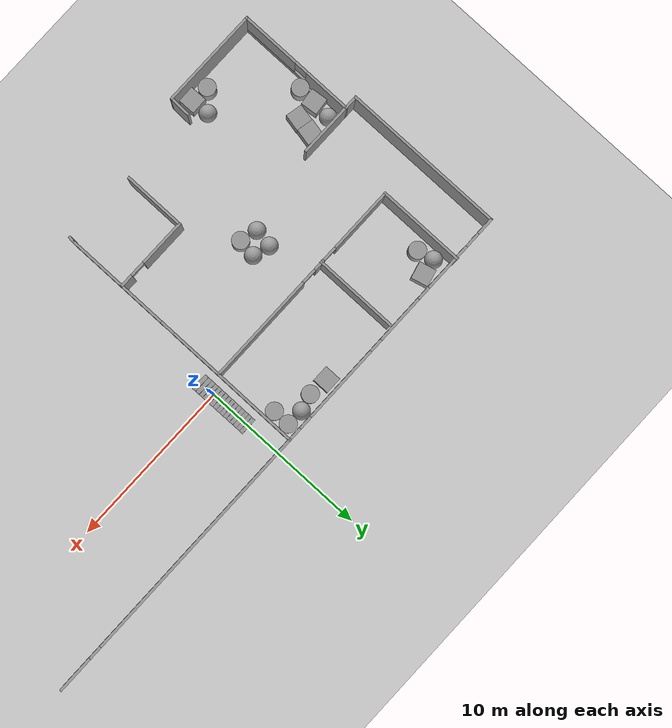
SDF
<sdf version="1.7">
 <world name="default">
  <model name="ground_plane">
   <static>1</static>
   <link name="link">
    <collision name="collision">
     <geometry><plane><normal>0 0 1</normal><size>100 100</size></plane></geometry>
     <surface>
      <contact><collide_bitmask>65535</collide_bitmask></contact>
      <friction><ode><mu>100</mu><mu2>50</mu2></ode></friction>
     </surface>
    </collision>
    <visual name="visual">
     <cast_shadows>0</cast_shadows>
     <geometry><plane><normal>0 0 1</normal><size>100 100</size></plane></geometry>
     <material>
      <script><uri>file://media/materials/scripts/gazebo.material</uri><name>Gazebo/Grey</name></script>
     </material>
    </visual>
   </link>
  </model>
  <model name="Dundler_mifflin">
   <pose>0.014796 -3.72139 0 0 -0 0</pose>
   <link name="Stairs_0">
    <visual name="Stairs_0_Visual_0">
     <pose>-0 6.1696 0.083333 0 -0 0</pose>
     <geometry><box><size>1 0.233333 0.166667</size></box></geometry>
     <material>
      <script><uri>file://media/materials/scripts/gazebo.material</uri><name>Gazebo/Grey</name></script>
      <ambient>1 1 1 1</ambient>
     </material>
     <meta><layer>0</layer></meta>
    </visual>
    <collision name="Stairs_0_Collision_0">
     <geometry><box><size>1 0.233333 0.166667</size></box></geometry>
     <pose>-0 6.1696 0.083333 0 -0 0</pose>
    </collision>
    <visual name="Stairs_0_Visual_1">
     <pose>-0 5.93627 0.25 0 -0 0</pose>
     <geometry><box><size>1 0.233333 0.166667</size></box></geometry>
     <material>
      <script><uri>file://media/materials/scripts/gazebo.material</uri><name>Gazebo/Grey</name></script>
      <ambient>1 1 1 1</ambient>
     </material>
     <meta><layer>0</layer></meta>
    </visual>
    <collision name="Stairs_0_Collision_1">
     <geometry><box><size>1 0.233333 0.166667</size></box></geometry>
     <pose>-0 5.93627 0.25 0 -0 0</pose>
    </collision>
    <visual name="Stairs_0_Visual_2">
     <pose>-0 5.70294 0.416667 0 -0 0</pose>
     <geometry><box><size>1 0.233333 0.166667</size></box></geometry>
     <material>
      <script><uri>file://media/materials/scripts/gazebo.material</uri><name>Gazebo/Grey</name></script>
      <ambient>1 1 1 1</ambient>
     </material>
     <meta><layer>0</layer></meta>
    </visual>
    <collision name="Stairs_0_Collision_2">
     <geometry><box><size>1 0.233333 0.166667</size></box></geometry>
     <pose>-0 5.70294 0.416667 0 -0 0</pose>
    </collision>
    <visual name="Stairs_0_Visual_3">
     <pose>-0 5.4696 0.583333 0 -0 0</pose>
     <geometry><box><size>1 0.233333 0.166667</size></box></geometry>
     <material>
      <script><uri>file://media/materials/scripts/gazebo.material</uri><name>Gazebo/Grey</name></script>
      <ambient>1 1 1 1</ambient>
     </material>
     <meta><layer>0</layer></meta>
    </visual>
    <collision name="Stairs_0_Collision_3">
     <geometry><box><size>1 0.233333 0.166667</size></box></geometry>
     <pose>-0 5.4696 0.583333 0 -0 0</pose>
    </collision>
    <visual name="Stairs_0_Visual_4">
     <pose>-0 5.23627 0.75 0 -0 0</pose>
     <geometry><box><size>1 0.233333 0.166667</size></box></geometry>
     <material>
      <script><uri>file://media/materials/scripts/gazebo.material</uri><name>Gazebo/Grey</name></script>
      <ambient>1 1 1 1</ambient>
     </material>
     <meta><layer>0</layer></meta>
    </visual>
    <collision name="Stairs_0_Collision_4">
     <geometry><box><size>1 0.233333 0.166667</size></box></geometry>
     <pose>-0 5.23627 0.75 0 -0 0</pose>
    </collision>
    <visual name="Stairs_0_Visual_5">
     <pose>-0 5.00293 0.916667 0 -0 0</pose>
     <geometry><box><size>1 0.233333 0.166667</size></box></geometry>
     <material>
      <script><uri>file://media/materials/scripts/gazebo.material</uri><name>Gazebo/Grey</name></script>
      <ambient>1 1 1 1</ambient>
     </material>
     <meta><layer>0</layer></meta>
    </visual>
    <collision name="Stairs_0_Collision_5">
     <geometry><box><size>1 0.233333 0.166667</size></box></geometry>
     <pose>-0 5.00293 0.916667 0 -0 0</pose>
    </collision>
    <visual name="Stairs_0_Visual_6">
     <pose>-0 4.7696 1.08333 0 -0 0</pose>
     <geometry><box><size>1 0.233333 0.166667</size></box></geometry>
     <material>
      <script><uri>file://media/materials/scripts/gazebo.material</uri><name>Gazebo/Grey</name></script>
      <ambient>1 1 1 1</ambient>
     </material>
     <meta><layer>0</layer></meta>
    </visual>
    <collision name="Stairs_0_Collision_6">
     <geometry><box><size>1 0.233333 0.166667</size></box></geometry>
     <pose>-0 4.7696 1.08333 0 -0 0</pose>
    </collision>
    <visual name="Stairs_0_Visual_7">
     <pose>-0 4.53627 1.25 0 -0 0</pose>
     <geometry><box><size>1 0.233333 0.166667</size></box></geometry>
     <material>
      <script><uri>file://media/materials/scripts/gazebo.material</uri><name>Gazebo/Grey</name></script>
      <ambient>1 1 1 1</ambient>
     </material>
     <meta><layer>0</layer></meta>
    </visual>
    <collision name="Stairs_0_Collision_7">
     <geometry><box><size>1 0.233333 0.166667</size></box></geometry>
     <pose>-0 4.53627 1.25 0 -0 0</pose>
    </collision>
    <visual name="Stairs_0_Visual_8">
     <pose>-0 4.30293 1.41667 0 -0 0</pose>
     <geometry><box><size>1 0.233333 0.166667</size></box></geometry>
     <material>
      <script><uri>file://media/materials/scripts/gazebo.material</uri><name>Gazebo/Grey</name></script>
      <ambient>1 1 1 1</ambient>
     </material>
     <meta><layer>0</layer></meta>
    </visual>
    <collision name="Stairs_0_Collision_8">
     <geometry><box><size>1 0.233333 0.166667</size></box></geometry>
     <pose>-0 4.30293 1.41667 0 -0 0</pose>
    </collision>
    <visual name="Stairs_0_Visual_9">
     <pose>-0 4.0696 1.58333 0 -0 0</pose>
     <geometry><box><size>1 0.233333 0.166667</size></box></geometry>
     <material>
      <script><uri>file://media/materials/scripts/gazebo.material</uri><name>Gazebo/Grey</name></script>
      <ambient>1 1 1 1</ambient>
     </material>
     <meta><layer>0</layer></meta>
    </visual>
    <collision name="Stairs_0_Collision_9">
     <geometry><box><size>1 0.233333 0.166667</size></box></geometry>
     <pose>-0 4.0696 1.58333 0 -0 0</pose>
    </collision>
    <visual name="Stairs_0_Visual_10">
     <pose>-0 3.83627 1.75 0 -0 0</pose>
     <geometry><box><size>1 0.233333 0.166667</size></box></geometry>
     <material>
      <script><uri>file://media/materials/scripts/gazebo.material</uri><name>Gazebo/Grey</name></script>
      <ambient>1 1 1 1</ambient>
     </material>
     <meta><layer>0</layer></meta>
    </visual>
    <collision name="Stairs_0_Collision_10">
     <geometry><box><size>1 0.233333 0.166667</size></box></geometry>
     <pose>-0 3.83627 1.75 0 -0 0</pose>
    </collision>
    <visual name="Stairs_0_Visual_11">
     <pose>-0 3.60293 1.91667 0 -0 0</pose>
     <geometry><box><size>1 0.233333 0.166667</size></box></geometry>
     <material>
      <script><uri>file://media/materials/scripts/gazebo.material</uri><name>Gazebo/Grey</name></script>
      <ambient>1 1 1 1</ambient>
     </material>
     <meta><layer>0</layer></meta>
    </visual>
    <collision name="Stairs_0_Collision_11">
     <geometry><box><size>1 0.233333 0.166667</size></box></geometry>
     <pose>-0 3.60293 1.91667 0 -0 0</pose>
    </collision>
    <visual name="Stairs_0_Visual_12">
     <pose>-0 3.3696 2.08333 0 -0 0</pose>
     <geometry><box><size>1 0.233333 0.166667</size></box></geometry>
     <material>
      <script><uri>file://media/materials/scripts/gazebo.material</uri><name>Gazebo/Grey</name></script>
      <ambient>1 1 1 1</ambient>
     </material>
     <meta><layer>0</layer></meta>
    </visual>
    <collision name="Stairs_0_Collision_12">
     <geometry><box><size>1 0.233333 0.166667</size></box></geometry>
     <pose>-0 3.3696 2.08333 0 -0 0</pose>
    </collision>
    <visual name="Stairs_0_Visual_13">
     <pose>-0 3.13627 2.25 0 -0 0</pose>
     <geometry><box><size>1 0.233333 0.166667</size></box></geometry>
     <material>
      <script><uri>file://media/materials/scripts/gazebo.material</uri><name>Gazebo/Grey</name></script>
      <ambient>1 1 1 1</ambient>
     </material>
     <meta><layer>0</layer></meta>
    </visual>
    <collision name="Stairs_0_Collision_13">
     <geometry><box><size>1 0.233333 0.166667</size></box></geometry>
     <pose>-0 3.13627 2.25 0 -0 0</pose>
    </collision>
    <visual name="Stairs_0_Visual_14">
     <pose>-0 2.90293 2.41667 0 -0 0</pose>
     <geometry><box><size>1 0.233333 0.166667</size></box></geometry>
     <material>
      <script><uri>file://media/materials/scripts/gazebo.material</uri><name>Gazebo/Grey</name></script>
      <ambient>1 1 1 1</ambient>
     </material>
     <meta><layer>0</layer></meta>
    </visual>
    <collision name="Stairs_0_Collision_14">
     <geometry><box><size>1 0.233333 0.166667</size></box></geometry>
     <pose>-0 2.90293 2.41667 0 -0 0</pose>
    </collision>
   </link>
   <link name="Wall_0">
    <collision name="Wall_0_Collision">
     <geometry><box><size>9.73708 0.15 2.5</size></box></geometry>
     <pose>0 0 1.25 0 -0 0</pose>
    </collision>
    <visual name="Wall_0_Visual">
     <pose>0 0 1.25 0 -0 0</pose>
     <geometry><box><size>9.73708 0.15 2.5</size></box></geometry>
     <material>
      <script><uri>file://media/materials/scripts/gazebo.material</uri><name>Gazebo/Grey</name></script>
      <ambient>1 1 1 1</ambient>
     </material>
     <meta><layer>0</layer></meta>
    </visual>
    <pose>-16.6238 3.54458 0 0 -0 -1.56939</pose>
   </link>
   <link name="Wall_1">
    <collision name="Wall_1_Collision">
     <geometry><box><size>0.906952 0.15 2.5</size></box></geometry>
     <pose>0 0 1.25 0 -0 0</pose>
    </collision>
    <visual name="Wall_1_Visual">
     <pose>0 0 1.25 0 -0 0</pose>
     <geometry><box><size>0.906952 0.15 2.5</size></box></geometry>
     <material>
      <script><uri>file://media/materials/scripts/gazebo.material</uri><name>Gazebo/Grey</name></script>
      <ambient>1 1 1 1</ambient>
     </material>
     <meta><layer>0</layer></meta>
    </visual>
    <pose>-16.2386 -1.29532 0 0 -0 0</pose>
   </link>
   <link name="Wall_10">
    <collision name="Wall_10_Collision">
     <geometry><box><size>5.25 0.15 2.5</size></box></geometry>
     <pose>0 0 1.25 0 -0 0</pose>
    </collision>
    <visual name="Wall_10_Visual">
     <pose>0 0 1.25 0 -0 0</pose>
     <geometry><box><size>5.25 0.15 2.5</size></box></geometry>
     <material>
      <script><uri>file://media/materials/scripts/gazebo.material</uri><name>Gazebo/Grey</name></script>
      <ambient>1 1 1 1</ambient>
     </material>
     <meta><layer>0</layer></meta>
    </visual>
    <pose>-13.8957 5.8475 0 0 -0 -1.5708</pose>
   </link>
   <link name="Wall_11">
    <pose>-7.43051 3.2975 0 0 -0 0</pose>
    <visual name="Wall_11_Visual_0">
     <pose>-4.55815 0 1.25 0 -0 0</pose>
     <geometry><box><size>3.96416 0.15 2.5</size></box></geometry>
     <material>
      <script><uri>file://media/materials/scripts/gazebo.material</uri><name>Gazebo/Grey</name></script>
      <ambient>1 1 1 1</ambient>
     </material>
     <meta><layer>0</layer></meta>
    </visual>
    <collision name="Wall_11_Collision_0">
     <geometry><box><size>3.96416 0.15 2.5</size></box></geometry>
     <pose>-4.55815 0 1.25 0 -0 0</pose>
    </collision>
    <visual name="Wall_11_Visual_1">
     <pose>-1.33225 0 1.25 0 -0 0</pose>
     <geometry><box><size>0.687646 0.15 2.5</size></box></geometry>
     <material>
      <script><uri>file://media/materials/scripts/gazebo.material</uri><name>Gazebo/Grey</name></script>
      <ambient>1 1 1 1</ambient>
     </material>
     <meta><layer>0</layer></meta>
    </visual>
    <collision name="Wall_11_Collision_1">
     <geometry><box><size>0.687646 0.15 2.5</size></box></geometry>
     <pose>-1.33225 0 1.25 0 -0 0</pose>
    </collision>
    <visual name="Wall_11_Visual_2">
     <pose>3.2259 0 1.25 0 -0 0</pose>
     <geometry><box><size>6.62865 0.15 2.5</size></box></geometry>
     <material>
      <script><uri>file://media/materials/scripts/gazebo.material</uri><name>Gazebo/Grey</name></script>
      <ambient>1 1 1 1</ambient>
     </material>
     <meta><layer>0</layer></meta>
    </visual>
    <collision name="Wall_11_Collision_2">
     <geometry><box><size>6.62865 0.15 2.5</size></box></geometry>
     <pose>3.2259 0 1.25 0 -0 0</pose>
    </collision>
    <visual name="Wall_11_Visual_3">
     <pose>-2.12607 0 2.25 0 -0 0</pose>
     <geometry><box><size>0.9 0.15 0.5</size></box></geometry>
     <material>
      <script><uri>file://media/materials/scripts/gazebo.material</uri><name>Gazebo/Grey</name></script>
      <ambient>1 1 1 1</ambient>
     </material>
     <meta><layer>0</layer></meta>
    </visual>
    <collision name="Wall_11_Collision_3">
     <geometry><box><size>0.9 0.15 0.5</size></box></geometry>
     <pose>-2.12607 0 2.25 0 -0 0</pose>
    </collision>
    <visual name="Wall_11_Visual_4">
     <pose>-0.538423 0 2.25 0 -0 0</pose>
     <geometry><box><size>0.9 0.15 0.5</size></box></geometry>
     <material>
      <script><uri>file://media/materials/scripts/gazebo.material</uri><name>Gazebo/Grey</name></script>
      <ambient>1 1 1 1</ambient>
     </material>
     <meta><layer>0</layer></meta>
    </visual>
    <collision name="Wall_11_Collision_4">
     <geometry><box><size>0.9 0.15 0.5</size></box></geometry>
     <pose>-0.538423 0 2.25 0 -0 0</pose>
    </collision>
   </link>
   <link name="Wall_12">
    <pose>-0.955224 -1.88756 0 0 -0 -1.56886</pose>
    <visual name="Wall_12_Visual_0">
     <pose>-3.63589 0 1.25 0 -0 0</pose>
     <geometry><box><size>3.24835 0.15 2.5</size></box></geometry>
     <material>
      <script><uri>file://media/materials/scripts/gazebo.material</uri><name>Gazebo/Grey</name></script>
      <ambient>1 1 1 1</ambient>
     </material>
     <meta><layer>0</layer></meta>
    </visual>
    <collision name="Wall_12_Collision_0">
     <geometry><box><size>3.24835 0.15 2.5</size></box></geometry>
     <pose>-3.63589 0 1.25 0 -0 0</pose>
    </collision>
    <visual name="Wall_12_Visual_1">
     <pose>2.07418 0 1.25 0 -0 0</pose>
     <geometry><box><size>6.37178 0.15 2.5</size></box></geometry>
     <material>
      <script><uri>file://media/materials/scripts/gazebo.material</uri><name>Gazebo/Grey</name></script>
      <ambient>1 1 1 1</ambient>
     </material>
     <meta><layer>0</layer></meta>
    </visual>
    <collision name="Wall_12_Collision_1">
     <geometry><box><size>6.37178 0.15 2.5</size></box></geometry>
     <pose>2.07418 0 1.25 0 -0 0</pose>
    </collision>
    <visual name="Wall_12_Visual_2">
     <pose>-1.56171 0 2.25 0 -0 0</pose>
     <geometry><box><size>0.9 0.15 0.5</size></box></geometry>
     <material>
      <script><uri>file://media/materials/scripts/gazebo.material</uri><name>Gazebo/Grey</name></script>
      <ambient>1 1 1 1</ambient>
     </material>
     <meta><layer>0</layer></meta>
    </visual>
    <collision name="Wall_12_Collision_2">
     <geometry><box><size>0.9 0.15 0.5</size></box></geometry>
     <pose>-1.56171 0 2.25 0 -0 0</pose>
    </collision>
   </link>
   <link name="Wall_14">
    <collision name="Wall_14_Collision">
     <geometry><box><size>0.402154 0.15 2.5</size></box></geometry>
     <pose>0 0 1.25 0 -0 0</pose>
    </collision>
    <visual name="Wall_14_Visual">
     <pose>0 0 1.25 0 -0 0</pose>
     <geometry><box><size>0.402154 0.15 2.5</size></box></geometry>
     <material>
      <script><uri>file://media/materials/scripts/gazebo.material</uri><name>Gazebo/Grey</name></script>
      <ambient>1 1 1 1</ambient>
     </material>
     <meta><layer>0</layer></meta>
    </visual>
    <pose>-0.960057 -7.19781 0 0 -0 1.45242</pose>
   </link>
   <link name="Wall_2">
    <pose>-15.8601 -4.84532 0 0 -0 -1.5708</pose>
    <visual name="Wall_2_Visual_0">
     <pose>-2.1925 0 1.25 0 -0 0</pose>
     <geometry><box><size>2.865 0.15 2.5</size></box></geometry>
     <material>
      <script><uri>file://media/materials/scripts/gazebo.material</uri><name>Gazebo/Grey</name></script>
      <ambient>1 1 1 1</ambient>
     </material>
     <meta><layer>0</layer></meta>
    </visual>
    <collision name="Wall_2_Collision_0">
     <geometry><box><size>2.865 0.15 2.5</size></box></geometry>
     <pose>-2.1925 0 1.25 0 -0 0</pose>
    </collision>
    <visual name="Wall_2_Visual_1">
     <pose>1.4325 0 0.25 0 -0 0</pose>
     <geometry><box><size>4.385 0.15 0.5</size></box></geometry>
     <material>
      <script><uri>file://media/materials/scripts/gazebo.material</uri><name>Gazebo/Grey</name></script>
      <ambient>1 1 1 1</ambient>
     </material>
     <meta><layer>0</layer></meta>
    </visual>
    <collision name="Wall_2_Collision_1">
     <geometry><box><size>4.385 0.15 0.5</size></box></geometry>
     <pose>1.4325 0 0.25 0 -0 0</pose>
    </collision>
    <visual name="Wall_2_Visual_2">
     <pose>1.8325 0 1.5 0 -0 0</pose>
     <geometry><box><size>3.585 0.15 2</size></box></geometry>
     <material>
      <script><uri>file://media/materials/scripts/gazebo.material</uri><name>Gazebo/Grey</name></script>
      <ambient>1 1 1 1</ambient>
     </material>
     <meta><layer>0</layer></meta>
    </visual>
    <collision name="Wall_2_Collision_2">
     <geometry><box><size>3.585 0.15 2</size></box></geometry>
     <pose>1.8325 0 1.5 0 -0 0</pose>
    </collision>
    <visual name="Wall_2_Visual_3">
     <pose>-0.359998 0 1.9 0 -0 0</pose>
     <geometry><box><size>0.8 0.15 1.2</size></box></geometry>
     <material>
      <script><uri>file://media/materials/scripts/gazebo.material</uri><name>Gazebo/Grey</name></script>
      <ambient>1 1 1 1</ambient>
     </material>
     <meta><layer>0</layer></meta>
    </visual>
    <collision name="Wall_2_Collision_3">
     <geometry><box><size>0.8 0.15 1.2</size></box></geometry>
     <pose>-0.359998 0 1.9 0 -0 0</pose>
    </collision>
   </link>
   <link name="Wall_3">
    <collision name="Wall_3_Collision">
     <geometry><box><size>6 0.15 2.5</size></box></geometry>
     <pose>0 0 1.25 0 -0 0</pose>
    </collision>
    <visual name="Wall_3_Visual">
     <pose>0 0 1.25 0 -0 0</pose>
     <geometry><box><size>6 0.15 2.5</size></box></geometry>
     <material>
      <script><uri>file://media/materials/scripts/gazebo.material</uri><name>Gazebo/Grey</name></script>
      <ambient>1 1 1 1</ambient>
     </material>
     <meta><layer>0</layer></meta>
    </visual>
    <pose>-12.9351 -8.39532 0 0 -0 0</pose>
   </link>
   <link name="Wall_30">
    <collision name="Wall_30_Collision">
     <geometry><box><size>5 0.15 2.5</size></box></geometry>
     <pose>0 0 1.25 0 -0 0</pose>
    </collision>
    <visual name="Wall_30_Visual">
     <pose>0 0 1.25 0 -0 0</pose>
     <geometry><box><size>5 0.15 2.5</size></box></geometry>
     <material>
      <script><uri>file://media/materials/scripts/gazebo.material</uri><name>Gazebo/Grey</name></script>
      <ambient>1 1 1 1</ambient>
     </material>
     <meta><layer>0</layer></meta>
    </visual>
    <pose>-8.94957 5.70028 0 0 -0 -1.5708</pose>
   </link>
   <link name="Wall_34">
    <collision name="Wall_34_Collision">
     <geometry><box><size>5.16909 0.15 2.5</size></box></geometry>
     <pose>0 0 1.25 0 -0 0</pose>
    </collision>
    <visual name="Wall_34_Visual">
     <pose>0 0 1.25 0 -0 0</pose>
     <geometry><box><size>5.16909 0.15 2.5</size></box></geometry>
     <material>
      <script><uri>file://media/materials/scripts/gazebo.material</uri><name>Gazebo/Grey</name></script>
      <ambient>1 1 1 1</ambient>
     </material>
     <meta><layer>0</layer></meta>
    </visual>
    <pose>-0.965281 5.80704 0 0 -0 1.5708</pose>
   </link>
   <link name="Wall_37">
    <collision name="Wall_37_Collision">
     <geometry><box><size>3.25 0.15 2.5</size></box></geometry>
     <pose>0 0 1.25 0 -0 0</pose>
    </collision>
    <visual name="Wall_37_Visual">
     <pose>0 0 1.25 0 -0 0</pose>
     <geometry><box><size>3.25 0.15 2.5</size></box></geometry>
     <material>
      <script><uri>file://media/materials/scripts/gazebo.material</uri><name>Gazebo/Grey</name></script>
      <ambient>1 1 1 1</ambient>
     </material>
     <meta><layer>0</layer></meta>
    </visual>
    <pose>-14.3101 -1.29532 0 0 -0 0</pose>
   </link>
   <link name="Wall_4">
    <collision name="Wall_4_Collision">
     <geometry><box><size>1.33091 0.15 2.5</size></box></geometry>
     <pose>0 0 1.25 0 -0 0</pose>
    </collision>
    <visual name="Wall_4_Visual">
     <pose>0 0 1.25 0 -0 0</pose>
     <geometry><box><size>1.33091 0.15 2.5</size></box></geometry>
     <material>
      <script><uri>file://media/materials/scripts/gazebo.material</uri><name>Gazebo/Grey</name></script>
      <ambient>1 1 1 1</ambient>
     </material>
     <meta><layer>0</layer></meta>
    </visual>
    <pose>-9.98985 -7.80487 0 0 -0 1.53655</pose>
   </link>
   <link name="Wall_46">
    <collision name="Wall_46_Collision">
     <geometry><box><size>3.75 0.15 2.5</size></box></geometry>
     <pose>0 0 1.25 0 -0 0</pose>
    </collision>
    <visual name="Wall_46_Visual">
     <pose>0 0 1.25 0 -0 0</pose>
     <geometry><box><size>3.75 0.15 2.5</size></box></geometry>
     <material>
      <script><uri>file://media/materials/scripts/gazebo.material</uri><name>Gazebo/Grey</name></script>
      <ambient>1 1 1 1</ambient>
     </material>
     <meta><layer>0</layer></meta>
    </visual>
    <pose>-5.38704 -5.37969 0 0 -0 1.5708</pose>
   </link>
   <link name="Wall_47">
    <pose>-3.19181 -3.57969 0 0 -0 0</pose>
    <visual name="Wall_47_Visual_0">
     <pose>-0.839551 0 1.25 0 -0 0</pose>
     <geometry><box><size>2.86154 0.15 2.5</size></box></geometry>
     <material>
      <script><uri>file://media/materials/scripts/gazebo.material</uri><name>Gazebo/Grey</name></script>
      <ambient>1 1 1 1</ambient>
     </material>
     <meta><layer>0</layer></meta>
    </visual>
    <collision name="Wall_47_Collision_0">
     <geometry><box><size>2.86154 0.15 2.5</size></box></geometry>
     <pose>-0.839551 0 1.25 0 -0 0</pose>
    </collision>
    <visual name="Wall_47_Visual_1">
     <pose>1.88077 0 1.25 0 -0 0</pose>
     <geometry><box><size>0.779103 0.15 2.5</size></box></geometry>
     <material>
      <script><uri>file://media/materials/scripts/gazebo.material</uri><name>Gazebo/Grey</name></script>
      <ambient>1 1 1 1</ambient>
     </material>
     <meta><layer>0</layer></meta>
    </visual>
    <collision name="Wall_47_Collision_1">
     <geometry><box><size>0.779103 0.15 2.5</size></box></geometry>
     <pose>1.88077 0 1.25 0 -0 0</pose>
    </collision>
    <visual name="Wall_47_Visual_2">
     <pose>1.04122 0 2.25 0 -0 0</pose>
     <geometry><box><size>0.9 0.15 0.5</size></box></geometry>
     <material>
      <script><uri>file://media/materials/scripts/gazebo.material</uri><name>Gazebo/Grey</name></script>
      <ambient>1 1 1 1</ambient>
     </material>
     <meta><layer>0</layer></meta>
    </visual>
    <collision name="Wall_47_Collision_2">
     <geometry><box><size>0.9 0.15 0.5</size></box></geometry>
     <pose>1.04122 0 2.25 0 -0 0</pose>
    </collision>
   </link>
   <link name="Wall_8">
    <pose>-0.030711 8.35511 0 0 -0 -3.14056</pose>
    <visual name="Wall_8_Visual_0">
     <pose>-15.508 0 1.25 0 -0 0</pose>
     <geometry><box><size>2.24053 0.15 2.5</size></box></geometry>
     <material>
      <script><uri>file://media/materials/scripts/gazebo.material</uri><name>Gazebo/Grey</name></script>
      <ambient>1 1 1 1</ambient>
     </material>
     <meta><layer>0</layer></meta>
    </visual>
    <collision name="Wall_8_Collision_0">
     <geometry><box><size>2.24053 0.15 2.5</size></box></geometry>
     <pose>-15.508 0 1.25 0 -0 0</pose>
    </collision>
    <visual name="Wall_8_Visual_1">
     <pose>16.107 0 1.25 0 -0 0</pose>
     <geometry><box><size>1.04256 0.15 2.5</size></box></geometry>
     <material>
      <script><uri>file://media/materials/scripts/gazebo.material</uri><name>Gazebo/Grey</name></script>
      <ambient>1 1 1 1</ambient>
     </material>
     <meta><layer>0</layer></meta>
    </visual>
    <collision name="Wall_8_Collision_1">
     <geometry><box><size>1.04256 0.15 2.5</size></box></geometry>
     <pose>16.107 0 1.25 0 -0 0</pose>
    </collision>
    <visual name="Wall_8_Visual_2">
     <pose>0.148986 0 0.25 0 -0 0</pose>
     <geometry><box><size>29.0734 0.15 0.5</size></box></geometry>
     <material>
      <script><uri>file://media/materials/scripts/gazebo.material</uri><name>Gazebo/Grey</name></script>
      <ambient>1 1 1 1</ambient>
     </material>
     <meta><layer>0</layer></meta>
    </visual>
    <collision name="Wall_8_Collision_2">
     <geometry><box><size>29.0734 0.15 0.5</size></box></geometry>
     <pose>0.148986 0 0.25 0 -0 0</pose>
    </collision>
    <visual name="Wall_8_Visual_3">
     <pose>-5.91685 0 1.5 0 -0 0</pose>
     <geometry><box><size>15.3418 0.15 2</size></box></geometry>
     <material>
      <script><uri>file://media/materials/scripts/gazebo.material</uri><name>Gazebo/Grey</name></script>
      <ambient>1 1 1 1</ambient>
     </material>
     <meta><layer>0</layer></meta>
    </visual>
    <collision name="Wall_8_Collision_3">
     <geometry><box><size>15.3418 0.15 2</size></box></geometry>
     <pose>-5.91685 0 1.5 0 -0 0</pose>
    </collision>
    <visual name="Wall_8_Visual_4">
     <pose>4.88478 0 1.5 0 -0 0</pose>
     <geometry><box><size>4.6615 0.15 2</size></box></geometry>
     <material>
      <script><uri>file://media/materials/scripts/gazebo.material</uri><name>Gazebo/Grey</name></script>
      <ambient>1 1 1 1</ambient>
     </material>
     <meta><layer>0</layer></meta>
    </visual>
    <collision name="Wall_8_Collision_4">
     <geometry><box><size>4.6615 0.15 2</size></box></geometry>
     <pose>4.88478 0 1.5 0 -0 0</pose>
    </collision>
    <visual name="Wall_8_Visual_5">
     <pose>9.47636 0 1.5 0 -0 0</pose>
     <geometry><box><size>2.92166 0.15 2</size></box></geometry>
     <material>
      <script><uri>file://media/materials/scripts/gazebo.material</uri><name>Gazebo/Grey</name></script>
      <ambient>1 1 1 1</ambient>
     </material>
     <meta><layer>0</layer></meta>
    </visual>
    <collision name="Wall_8_Collision_5">
     <geometry><box><size>2.92166 0.15 2</size></box></geometry>
     <pose>9.47636 0 1.5 0 -0 0</pose>
    </collision>
    <visual name="Wall_8_Visual_6">
     <pose>13.2114 0 1.5 0 -0 0</pose>
     <geometry><box><size>2.94852 0.15 2</size></box></geometry>
     <material>
      <script><uri>file://media/materials/scripts/gazebo.material</uri><name>Gazebo/Grey</name></script>
      <ambient>1 1 1 1</ambient>
     </material>
     <meta><layer>0</layer></meta>
    </visual>
    <collision name="Wall_8_Collision_6">
     <geometry><box><size>2.94852 0.15 2</size></box></geometry>
     <pose>13.2114 0 1.5 0 -0 0</pose>
    </collision>
    <visual name="Wall_8_Visual_7">
     <pose>-13.9877 0 1.9 0 -0 0</pose>
     <geometry><box><size>0.8 0.15 1.2</size></box></geometry>
     <material>
      <script><uri>file://media/materials/scripts/gazebo.material</uri><name>Gazebo/Grey</name></script>
      <ambient>1 1 1 1</ambient>
     </material>
     <meta><layer>0</layer></meta>
    </visual>
    <collision name="Wall_8_Collision_7">
     <geometry><box><size>0.8 0.15 1.2</size></box></geometry>
     <pose>-13.9877 0 1.9 0 -0 0</pose>
    </collision>
    <visual name="Wall_8_Visual_8">
     <pose>2.15403 0 1.9 0 -0 0</pose>
     <geometry><box><size>0.8 0.15 1.2</size></box></geometry>
     <material>
      <script><uri>file://media/materials/scripts/gazebo.material</uri><name>Gazebo/Grey</name></script>
      <ambient>1 1 1 1</ambient>
     </material>
     <meta><layer>0</layer></meta>
    </visual>
    <collision name="Wall_8_Collision_8">
     <geometry><box><size>0.8 0.15 1.2</size></box></geometry>
     <pose>2.15403 0 1.9 0 -0 0</pose>
    </collision>
    <visual name="Wall_8_Visual_9">
     <pose>7.61553 0 1.9 0 -0 0</pose>
     <geometry><box><size>0.8 0.15 1.2</size></box></geometry>
     <material>
      <script><uri>file://media/materials/scripts/gazebo.material</uri><name>Gazebo/Grey</name></script>
      <ambient>1 1 1 1</ambient>
     </material>
     <meta><layer>0</layer></meta>
    </visual>
    <collision name="Wall_8_Collision_9">
     <geometry><box><size>0.8 0.15 1.2</size></box></geometry>
     <pose>7.61553 0 1.9 0 -0 0</pose>
    </collision>
    <visual name="Wall_8_Visual_10">
     <pose>11.3372 0 1.9 0 -0 0</pose>
     <geometry><box><size>0.8 0.15 1.2</size></box></geometry>
     <material>
      <script><uri>file://media/materials/scripts/gazebo.material</uri><name>Gazebo/Grey</name></script>
      <ambient>1 1 1 1</ambient>
     </material>
     <meta><layer>0</layer></meta>
    </visual>
    <collision name="Wall_8_Collision_10">
     <geometry><box><size>0.8 0.15 1.2</size></box></geometry>
     <pose>11.3372 0 1.9 0 -0 0</pose>
    </collision>
    <visual name="Wall_8_Visual_11">
     <pose>15.1357 0 2.25 0 -0 0</pose>
     <geometry><box><size>0.9 0.15 0.5</size></box></geometry>
     <material>
      <script><uri>file://media/materials/scripts/gazebo.material</uri><name>Gazebo/Grey</name></script>
      <ambient>1 1 1 1</ambient>
     </material>
     <meta><layer>0</layer></meta>
    </visual>
    <collision name="Wall_8_Collision_11">
     <geometry><box><size>0.9 0.15 0.5</size></box></geometry>
     <pose>15.1357 0 2.25 0 -0 0</pose>
    </collision>
   </link>
   <static>1</static>
  </model>
  <model name="unit_box_0">
   <pose>-13.8545 -5.68642 0.499996 -0 9e-06 -0.206806</pose>
   <link name="link">
    <inertial>
     <mass>1</mass>
     <inertia>
      <ixx>0.166667</ixx>
      <ixy>0</ixy>
      <ixz>0</ixz>
      <iyy>0.166667</iyy>
      <iyz>0</iyz>
      <izz>0.166667</izz>
     </inertia>
    </inertial>
    <collision name="collision"><geometry><box><size>1 1 1</size></box></geometry></collision>
    <visual name="visual">
     <geometry><box><size>1 1 1</size></box></geometry>
     <material>
      <script><name>Gazebo/Grey</name><uri>file://media/materials/scripts/gazebo.material</uri></script>
     </material>
    </visual>
   </link>
  </model>
  <model name="unit_sphere">
   <pose>-15.186 -5.59313 0.5 0.051639 -0.120482 0.209326</pose>
   <link name="link">
    <inertial>
     <mass>1</mass>
     <inertia><ixx>0.1</ixx><ixy>0</ixy><ixz>0</ixz><iyy>0.1</iyy><iyz>0</iyz><izz>0.1</izz></inertia>
    </inertial>
    <collision name="collision"><geometry><sphere><radius>0.5</radius></sphere></geometry></collision>
    <visual name="visual">
     <geometry><sphere><radius>0.5</radius></sphere></geometry>
     <material>
      <script><name>Gazebo/Grey</name><uri>file://media/materials/scripts/gazebo.material</uri></script>
     </material>
    </visual>
   </link>
  </model>
  <model name="unit_cylinder">
   <pose>-15.2703 -7.72363 0.499992 0 -0 -0.355188</pose>
   <link name="link">
    <inertial>
     <mass>1</mass>
     <inertia><ixx>0.145833</ixx><ixy>0</ixy><ixz>0</ixz><iyy>0.145833</iyy><iyz>0</iyz><izz>0.125</izz></inertia>
    </inertial>
    <collision name="collision">
     <geometry><cylinder><radius>0.5</radius><length>1</length></cylinder></geometry>
    </collision>
    <visual name="visual">
     <geometry><cylinder><radius>0.5</radius><length>1</length></cylinder></geometry>
     <material>
      <script><name>Gazebo/Grey</name><uri>file://media/materials/scripts/gazebo.material</uri></script>
     </material>
    </visual>
   </link>
  </model>
  <model name="unit_box_1">
   <pose>-14.0313 -6.67224 0.499996 0 -9e-06 -0.206535</pose>
   <link name="link">
    <inertial>
     <mass>1</mass>
     <inertia>
      <ixx>0.166667</ixx>
      <ixy>0</ixy>
      <ixz>0</ixz>
      <iyy>0.166667</iyy>
      <iyz>0</iyz>
      <izz>0.166667</izz>
     </inertia>
    </inertial>
    <collision name="collision"><geometry><box><size>1 1 1</size></box></geometry></collision>
    <visual name="visual">
     <geometry><box><size>1 1 1</size></box></geometry>
     <material>
      <script><name>Gazebo/Grey</name><uri>file://media/materials/scripts/gazebo.material</uri></script>
     </material>
    </visual>
   </link>
  </model>
  <model name="unit_box_2">
   <pose>-15.2201 -6.66203 0.5 0 -0 0.105967</pose>
   <link name="link">
    <inertial>
     <mass>1</mass>
     <inertia>
      <ixx>0.166667</ixx>
      <ixy>0</ixy>
      <ixz>0</ixz>
      <iyy>0.166667</iyy>
      <iyz>0</iyz>
      <izz>0.166667</izz>
     </inertia>
    </inertial>
    <collision name="collision"><geometry><box><size>1 1 1</size></box></geometry></collision>
    <visual name="visual">
     <geometry><box><size>1 1 1</size></box></geometry>
     <material>
      <script><name>Gazebo/Grey</name><uri>file://media/materials/scripts/gazebo.material</uri></script>
     </material>
    </visual>
   </link>
  </model>
  <model name="unit_box_3">
   <pose>-10.8542 -11.5338 0.499995 0 1e-05 0.015865</pose>
   <link name="link">
    <inertial>
     <mass>1</mass>
     <inertia>
      <ixx>0.166667</ixx>
      <ixy>0</ixy>
      <ixz>0</ixz>
      <iyy>0.166667</iyy>
      <iyz>0</iyz>
      <izz>0.166667</izz>
     </inertia>
    </inertial>
    <collision name="collision"><geometry><box><size>1 1 1</size></box></geometry></collision>
    <visual name="visual">
     <geometry><box><size>1 1 1</size></box></geometry>
     <material>
      <script><name>Gazebo/Grey</name><uri>file://media/materials/scripts/gazebo.material</uri></script>
     </material>
    </visual>
   </link>
  </model>
  <model name="unit_cylinder_0">
   <pose>-11.9037 -11.4255 0.499996 3e-06 1e-06 -0</pose>
   <link name="link">
    <inertial>
     <mass>1</mass>
     <inertia><ixx>0.145833</ixx><ixy>0</ixy><ixz>0</ixz><iyy>0.145833</iyy><iyz>0</iyz><izz>0.125</izz></inertia>
    </inertial>
    <collision name="collision">
     <geometry><cylinder><radius>0.5</radius><length>1</length></cylinder></geometry>
    </collision>
    <visual name="visual">
     <geometry><cylinder><radius>0.5</radius><length>1</length></cylinder></geometry>
     <material>
      <script><name>Gazebo/Grey</name><uri>file://media/materials/scripts/gazebo.material</uri></script>
     </material>
    </visual>
   </link>
  </model>
  <model name="unit_sphere_0">
   <pose>-10.9433 -10.5175 0.5 -0.035515 -0.000372 0.002147</pose>
   <link name="link">
    <inertial>
     <mass>1</mass>
     <inertia><ixx>0.1</ixx><ixy>0</ixy><ixz>0</ixz><iyy>0.1</iyy><iyz>0</iyz><izz>0.1</izz></inertia>
    </inertial>
    <collision name="collision"><geometry><sphere><radius>0.5</radius></sphere></geometry></collision>
    <visual name="visual">
     <geometry><sphere><radius>0.5</radius></sphere></geometry>
     <material>
      <script><name>Gazebo/Grey</name><uri>file://media/materials/scripts/gazebo.material</uri></script>
     </material>
    </visual>
   </link>
  </model>
  <model name="unit_cylinder_1">
   <pose>-1.5255 4.00375 0.499997 2e-06 -1e-06 0.250427</pose>
   <link name="link">
    <inertial>
     <mass>1</mass>
     <inertia><ixx>0.145833</ixx><ixy>0</ixy><ixz>0</ixz><iyy>0.145833</iyy><iyz>0</iyz><izz>0.125</izz></inertia>
    </inertial>
    <collision name="collision">
     <geometry><cylinder><radius>0.5</radius><length>1</length></cylinder></geometry>
    </collision>
    <visual name="visual">
     <geometry><cylinder><radius>0.5</radius><length>1</length></cylinder></geometry>
     <material>
      <script><name>Gazebo/Grey</name><uri>file://media/materials/scripts/gazebo.material</uri></script>
     </material>
    </visual>
   </link>
  </model>
  <model name="unit_sphere_1">
   <pose>-2.52421 4.05523 0.5 0.015831 -0.011643 -0.046022</pose>
   <link name="link">
    <inertial>
     <mass>1</mass>
     <inertia><ixx>0.1</ixx><ixy>0</ixy><ixz>0</ixz><iyy>0.1</iyy><iyz>0</iyz><izz>0.1</izz></inertia>
    </inertial>
    <collision name="collision"><geometry><sphere><radius>0.5</radius></sphere></geometry></collision>
    <visual name="visual">
     <geometry><sphere><radius>0.5</radius></sphere></geometry>
     <material>
      <script><name>Gazebo/Grey</name><uri>file://media/materials/scripts/gazebo.material</uri></script>
     </material>
    </visual>
   </link>
  </model>
  <model name="unit_cylinder_2">
   <pose>-3.49038 3.79698 0.499993 -3e-06 -1e-06 0.010443</pose>
   <link name="link">
    <inertial>
     <mass>1</mass>
     <inertia><ixx>0.145833</ixx><ixy>0</ixy><ixz>0</ixz><iyy>0.145833</iyy><iyz>0</iyz><izz>0.125</izz></inertia>
    </inertial>
    <collision name="collision">
     <geometry><cylinder><radius>0.5</radius><length>1</length></cylinder></geometry>
    </collision>
    <visual name="visual">
     <geometry><cylinder><radius>0.5</radius><length>1</length></cylinder></geometry>
     <material>
      <script><name>Gazebo/Grey</name><uri>file://media/materials/scripts/gazebo.material</uri></script>
     </material>
    </visual>
   </link>
  </model>
  <model name="unit_box_4">
   <pose>-4.64975 3.92292 0.499995 -1e-05 0 0</pose>
   <link name="link">
    <inertial>
     <mass>1</mass>
     <inertia>
      <ixx>0.166667</ixx>
      <ixy>0</ixy>
      <ixz>0</ixz>
      <iyy>0.166667</iyy>
      <iyz>0</iyz>
      <izz>0.166667</izz>
     </inertia>
    </inertial>
    <collision name="collision"><geometry><box><size>1 1 1</size></box></geometry></collision>
    <visual name="visual">
     <geometry><box><size>1 1 1</size></box></geometry>
     <material>
      <script><name>Gazebo/Grey</name><uri>file://media/materials/scripts/gazebo.material</uri></script>
     </material>
    </visual>
   </link>
  </model>
  <model name="unit_cylinder_3">
   <pose>-1.52732 3.00249 0.499996 3e-06 1e-06 -0.000616</pose>
   <link name="link">
    <inertial>
     <mass>1</mass>
     <inertia><ixx>0.145833</ixx><ixy>0</ixy><ixz>0</ixz><iyy>0.145833</iyy><iyz>0</iyz><izz>0.125</izz></inertia>
    </inertial>
    <collision name="collision">
     <geometry><cylinder><radius>0.5</radius><length>1</length></cylinder></geometry>
    </collision>
    <visual name="visual">
     <geometry><cylinder><radius>0.5</radius><length>1</length></cylinder></geometry>
     <material>
      <script><name>Gazebo/Grey</name><uri>file://media/materials/scripts/gazebo.material</uri></script>
     </material>
    </visual>
   </link>
  </model>
  <model name="unit_box_5">
   <pose>-12.309 3.93336 0.499995 0 1e-05 0.247169</pose>
   <link name="link">
    <inertial>
     <mass>1</mass>
     <inertia>
      <ixx>0.166667</ixx>
      <ixy>0</ixy>
      <ixz>0</ixz>
      <iyy>0.166667</iyy>
      <iyz>0</iyz>
      <izz>0.166667</izz>
     </inertia>
    </inertial>
    <collision name="collision"><geometry><box><size>1 1 1</size></box></geometry></collision>
    <visual name="visual">
     <geometry><box><size>1 1 1</size></box></geometry>
     <material>
      <script><name>Gazebo/Grey</name><uri>file://media/materials/scripts/gazebo.material</uri></script>
     </material>
    </visual>
   </link>
  </model>
  <model name="unit_cylinder_4">
   <pose>-13.0407 2.82897 0.499993 -2e-06 -0 0.12726</pose>
   <link name="link">
    <inertial>
     <mass>1</mass>
     <inertia><ixx>0.145833</ixx><ixy>0</ixy><ixz>0</ixz><iyy>0.145833</iyy><iyz>0</iyz><izz>0.125</izz></inertia>
    </inertial>
    <collision name="collision">
     <geometry><cylinder><radius>0.5</radius><length>1</length></cylinder></geometry>
    </collision>
    <visual name="visual">
     <geometry><cylinder><radius>0.5</radius><length>1</length></cylinder></geometry>
     <material>
      <script><name>Gazebo/Grey</name><uri>file://media/materials/scripts/gazebo.material</uri></script>
     </material>
    </visual>
   </link>
  </model>
  <model name="unit_sphere_2">
   <pose>-13.3059 3.79653 0.5 0.002558 -0.000422 -0.247836</pose>
   <link name="link">
    <inertial>
     <mass>1</mass>
     <inertia><ixx>0.1</ixx><ixy>0</ixy><ixz>0</ixz><iyy>0.1</iyy><iyz>0</iyz><izz>0.1</izz></inertia>
    </inertial>
    <collision name="collision"><geometry><sphere><radius>0.5</radius></sphere></geometry></collision>
    <visual name="visual">
     <geometry><sphere><radius>0.5</radius></sphere></geometry>
     <material>
      <script><name>Gazebo/Grey</name><uri>file://media/materials/scripts/gazebo.material</uri></script>
     </material>
    </visual>
   </link>
  </model>
  <model name="unit_sphere_3">
   <pose>-7.89149 -3.21114 0.5 -0.023602 -0.020836 -0.081101</pose>
   <link name="link">
    <inertial>
     <mass>1</mass>
     <inertia><ixx>0.1</ixx><ixy>0</ixy><ixz>0</ixz><iyy>0.1</iyy><iyz>0</iyz><izz>0.1</izz></inertia>
    </inertial>
    <collision name="collision"><geometry><sphere><radius>0.5</radius></sphere></geometry></collision>
    <visual name="visual">
     <geometry><sphere><radius>0.5</radius></sphere></geometry>
     <material>
      <script><name>Gazebo/Grey</name><uri>file://media/materials/scripts/gazebo.material</uri></script>
     </material>
    </visual>
   </link>
  </model>
  <model name="unit_cylinder_5">
   <pose>-7.02592 -4.50058 0.499991 -0 -0 -0.000739</pose>
   <link name="link">
    <inertial>
     <mass>1</mass>
     <inertia><ixx>0.145833</ixx><ixy>0</ixy><ixz>0</ixz><iyy>0.145833</iyy><iyz>0</iyz><izz>0.125</izz></inertia>
    </inertial>
    <collision name="collision">
     <geometry><cylinder><radius>0.5</radius><length>1</length></cylinder></geometry>
    </collision>
    <visual name="visual">
     <geometry><cylinder><radius>0.5</radius><length>1</length></cylinder></geometry>
     <material>
      <script><name>Gazebo/Grey</name><uri>file://media/materials/scripts/gazebo.material</uri></script>
     </material>
    </visual>
   </link>
  </model>
  <model name="unit_sphere_4">
   <pose>-8.05594 -4.26159 0.5 0.002749 -0.022061 0.064478</pose>
   <link name="link">
    <inertial>
     <mass>1</mass>
     <inertia><ixx>0.1</ixx><ixy>0</ixy><ixz>0</ixz><iyy>0.1</iyy><iyz>0</iyz><izz>0.1</izz></inertia>
    </inertial>
    <collision name="collision"><geometry><sphere><radius>0.5</radius></sphere></geometry></collision>
    <visual name="visual">
     <geometry><sphere><radius>0.5</radius></sphere></geometry>
     <material>
      <script><name>Gazebo/Grey</name><uri>file://media/materials/scripts/gazebo.material</uri></script>
     </material>
    </visual>
   </link>
  </model>
  <model name="unit_sphere_5">
   <pose>-6.92028 -3.49528 0.5 -0.018558 0.013298 -0.048235</pose>
   <link name="link">
    <inertial>
     <mass>1</mass>
     <inertia><ixx>0.1</ixx><ixy>0</ixy><ixz>0</ixz><iyy>0.1</iyy><iyz>0</iyz><izz>0.1</izz></inertia>
    </inertial>
    <collision name="collision"><geometry><sphere><radius>0.5</radius></sphere></geometry></collision>
    <visual name="visual">
     <geometry><sphere><radius>0.5</radius></sphere></geometry>
     <material>
      <script><name>Gazebo/Grey</name><uri>file://media/materials/scripts/gazebo.material</uri></script>
     </material>
    </visual>
   </link>
  </model>
 </world>
</sdf>
